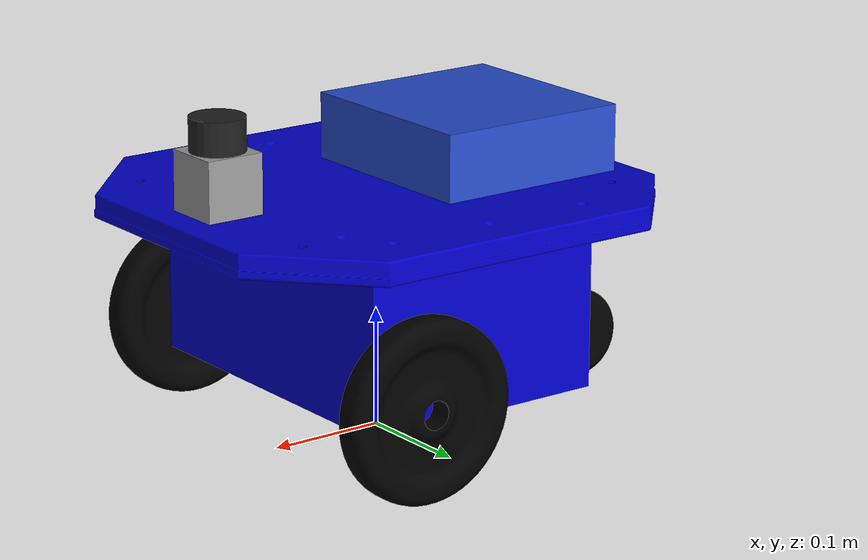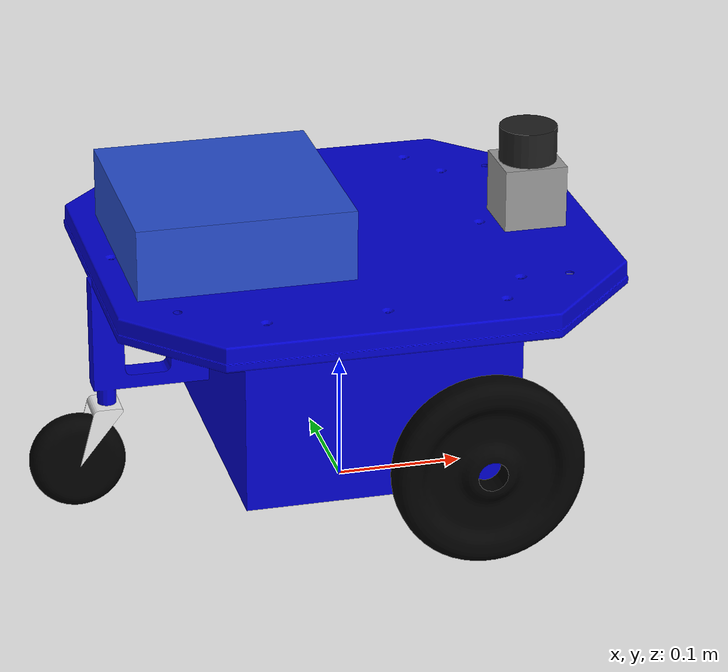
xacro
<?xml version="1.0"?>

<robot name="erratic"
    xmlns:sensor="http://playerstage.sourceforge.net/gazebo/xmlschema/#sensor"
    xmlns:controller="http://playerstage.sourceforge.net/gazebo/xmlschema/#controller"
    xmlns:interface="http://playerstage.sourceforge.net/gazebo/xmlschema/#interface">

    <!-- Included URDF Files -->
    <include filename="$(find erratic_description)/urdf/erratic_base.xacro" />
    <include filename="$(find erratic_description)/urdf/erratic_hokuyo_laser.xacro" />

    <erratic />

    <!-- BASE LASER ATTACHMENT -->
    <erratic_hokuyo_laser parent="base_link">
        <origin xyz="${base_link_to_front - 0.01 - 0.04} 0 ${base_link_to_top}" rpy="0 0 0" />
    </erratic_hokuyo_laser>
</robot>

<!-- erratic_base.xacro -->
<robot
    xmlns:sensor="http://playerstage.sourceforge.net/gazebo/xmlschema/#sensor"
    xmlns:controller="http://playerstage.sourceforge.net/gazebo/xmlschema/#controller"
    xmlns:interface="http://playerstage.sourceforge.net/gazebo/xmlschema/#interface">

    <!-- Included URDF Files -->
    <include filename="$(find erratic_description)/urdf/materials.urdf.xacro" />
    <include filename="$(find erratic_description)/urdf/erratic_computer.xacro" />
    <include filename="$(find erratic_description)/urdf/erratic_wheel.xacro" />

    <property name="base_link_to_top" value="0.0795" />
    <property name="base_link_to_front" value="0.2025" />
    <property name="base_link_to_back" value="0.1975" />

    <macro name="erratic">
        <!-- base_footprint is a fictitious link(frame) that is on the ground right below base_link origin,
             navigation stack depends on this frame -->
        <link name="base_footprint">
            <inertial>
                <mass value="0.0001" />
                <origin xyz="0 0 0" />
                <inertia ixx="0.0001" ixy="0.0" ixz="0.0"
                         iyy="0.0001" iyz="0.0"
                         izz="0.0001" />
            </inertial>

            <visual>
                <origin xyz="0 0 0" rpy="0 0 0" />
                <geometry>
                    <box size="0.001 0.001 0.001" />
                </geometry>
                <material name="Green" />
            </visual>

            <collision>
                <origin xyz="0 0 0.128" rpy="0 0 0" />
                <geometry>
                  <box size="0.001 0.001 0.001" />
                </geometry>
            </collision>
        </link>

        <joint name="base_footprint_joint" type="fixed">
            <origin xyz="0 0 0.128" rpy="0 0 0" />
            <parent link="base_footprint"/>
            <child link="base_link" />
        </joint>

        <!-- Links and Joints (i.e., the robot) -->
        <link name="base_link">
            <inertial>
                <mass value="20" />
                <origin xyz="0 0 0" />
                <inertia ixx="1.0" ixy="0.0" ixz="0.0"
                         iyy="1.0" iyz="0.0"
                         izz="1.0" />
            </inertial>

            <visual>
                <origin xyz="0 0 0" rpy="0 0 0" />
                <geometry>
                    <mesh filename="package://erratic_description/meshes/collada/erratic_base_link.dae"/>
                </geometry>
                <material name="Blue" />
            </visual>

            <collision>
                <origin xyz="0 0 0" rpy="0 0 0" />
                <geometry>
                    <mesh filename="package://erratic_description/meshes/collada/erratic_base_link.dae"/>
                </geometry>
            </collision>
        </link>

        <joint name="base_caster_support_joint" type="continuous">
            <origin xyz="-0.188 0 -0.043" rpy="0 0 0" />
            <parent link="base_link" />
            <child link="base_caster_support_link"/>

            <axis xyz="0 0 1" />
            <anchor xyz="0.01 0 0" />
            <limit effort="100" velocity="100" k_velocity="0" />
            <joint_properties damping="0.0" friction="0.0" />
        </joint>

        <transmission type="pr2_mechanism_model/SimpleTransmission" name="base_caster_support_trans">
            <actuator name="base_caster_support_motor" />
            <joint name="base_caster_support_joint" />
            <mechanicalReduction>1.0</mechanicalReduction>
        </transmission>

        <link name="base_caster_support_link">
            <inertial>
                <mass value="0.1"/>
                <origin xyz="0 0 0" />
                <inertia ixx="0.01" ixy="0.0" ixz="0.0"
                         iyy="0.01" iyz="0.0"
                         izz="0.01" />
            </inertial>

            <visual>
                <origin xyz="0 0 0" rpy="0 0 0" />
                <geometry>
                    <mesh filename="package://erratic_description/meshes/collada/erratic_caster_support_link.dae"/>
                </geometry>
            </visual>

            <collision>
                <origin xyz="0 0 0" rpy="0 0 0" />
                <geometry>
                    <mesh filename="package://erratic_description/meshes/collada/erratic_caster_support_link.dae"/>
                </geometry>
            </collision>
        </link>

        <joint name="caster_wheel_joint" type="continuous">
            <origin xyz="-0.025 0 -0.0469" rpy="0 0 0" />
            <parent link="base_caster_support_link" />
            <child link="caster_wheel_link" />

            <axis xyz="0 1 0" />
            <anchor xyz="0 0 0" />
            <limit effort="100" velocity="100" k_velocity="0" />
            <joint_properties damping="0.0" friction="0.0" />
        </joint>

        <transmission type="pr2_mechanism_model/SimpleTransmission" name="caster_wheel_trans">
            <actuator name="caster_wheel_motor" />
            <joint name="caster_wheel_joint" />
            <mechanicalReduction>1.0</mechanicalReduction>
        </transmission>

        <link name="caster_wheel_link">
            <inertial>
                <mass value="0.1" />
                <origin xyz="0 0 0" rpy="0 0 0" />
                <inertia  ixx="0.012411765597" ixy="-0.000711733678" ixz="0.00050272983"
                          iyy="0.015218160428" iyz="-0.000004273467"
                          izz="0.011763977943" />
            </inertial>

            <visual>
                <origin xyz="0 0 0" rpy="0 0 0" />
                <geometry>
                    <mesh filename="package://erratic_description/meshes/collada/erratic_caster_wheel_link.dae"/>
                </geometry>
                <material name="Black"/>
            </visual>

            <collision>
                <origin xyz="0 0 0" rpy="0 0 0" />
                <geometry>
                    <mesh filename="package://erratic_description/meshes/collada/erratic_caster_wheel_link.dae"/>
                </geometry>
            </collision>
        </link>

        <gazebo reference="caster_wheel_link">
            <mu1 value="100.0" />
            <mu2 value="100.0" />
            <kp  value="1000000.0" />
            <kd  value="1.0" />
        </gazebo>

        <!-- MACRO INSTANTIATION -->

        <erratic_computer parent="base_link">
            <origin xyz="${-base_link_to_back + computer_size_x/2 + 0.02} 0 ${base_link_to_top}" rpy="0 0 0" />
        </erratic_computer>

        <erratic_wheel suffix="left" parent="base_link">
            <origin xyz="0.075 0.16525 -0.053" rpy="0 0 0" />
        </erratic_wheel>

        <erratic_wheel suffix="right" parent="base_link">
            <origin xyz="0.075 -0.16525 -0.053" rpy="0 0 0" />
        </erratic_wheel>

        <!-- CONTROLLERS -->

        <gazebo>
            <controller:diffdrive_plugin name="differential_drive_controller" plugin="libdiffdrive_plugin.so">
                <alwaysOn>true</alwaysOn>
                <update>100</update>
                <updateRate>100.0</updateRate>
                <leftJoint>base_link_right_wheel_joint</leftJoint>
                <rightJoint>base_link_left_wheel_joint</rightJoint>
                <wheelSeparation>0.3305</wheelSeparation>
                <wheelDiameter>0.15</wheelDiameter>
                <torque>5</torque>
                <interface:position name="position_iface_0"/>
                <robotNamespace>/</robotNamespace>
                <topicName>cmd_vel</topicName>
            </controller:diffdrive_plugin>

            <controller:gazebo_ros_p3d name="p3d_base_controller" plugin="libgazebo_ros_p3d.so">
                <alwaysOn>true</alwaysOn>
                <updateRate>100.0</updateRate>
                <bodyName>base_link</bodyName>
                <topicName>base_pose_ground_truth</topicName>
                <gaussianNoise>0.01</gaussianNoise>
                <frameName>map</frameName>
                <xyzOffsets>0 0 0</xyzOffsets>
                <rpyOffsets>0 0 0</rpyOffsets>
                <interface:position name="p3d_base_position"/>
            </controller:gazebo_ros_p3d>

            <canonicalBody>base_footprint</canonicalBody>

            <controller:gazebo_ros_controller_manager name="gazebo_ros_controller_manager" plugin="libgazebo_ros_controller_manager.so">
                <alwaysOn>true</alwaysOn>
                <updateRate>100.0</updateRate>
                <interface:audio name="gazebo_ros_controller_manager_dummy_iface" />
            </controller:gazebo_ros_controller_manager>
        </gazebo>

        <!-- GAZEBO MATERIALS -->

        <gazebo reference="base_link">
            <material>Erratic/BlueBrushedAluminum</material>
        </gazebo>

        <gazebo reference="base_top_link">
            <material>Erratic/BlueBrushedAluminum</material>
        </gazebo>

        <gazebo reference="caster_wheel_link">
            <material>Erratic/Black</material>
        </gazebo>

        <gazebo reference="base_caster_box_link">
            <material>Erratic/Black</material>
        </gazebo>

        <gazebo reference="base_caster_support_link">
            <material>Erratic/White</material>
        </gazebo>
    </macro>
</robot>

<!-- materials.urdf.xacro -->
<robot>

    <material name="Black">
        <color rgba="0.0 0.0 0.0 1.0"/>
    </material>

    <material name="Blue">
        <color rgba="0.0 0.0 0.8 1.0"/>
    </material>

    <material name="Green">
        <color rgba="0.0 0.8 0.0 1.0"/>
    </material>

    <material name="Grey">
        <color rgba="0.7 0.7 0.7 1.0"/>
    </material>

    <material name="Grey2">
        <color rgba="0.9 0.9 0.9 1.0"/>
    </material>

    <material name="Red">
        <color rgba="0.8 0.0 0.0 1.0"/>
    </material>

    <material name="White">
        <color rgba="1.0 1.0 1.0 1.0"/>
    </material>

    <material name="GunMetalBrushedAluminum">
        <texture filename="package://smart_arm_description/Media/materials/textures/gun_metal_brushed_aluminum.jpg" />
    </material>

</robot>

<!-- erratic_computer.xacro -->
<robot
    xmlns:sensor="http://playerstage.sourceforge.net/gazebo/xmlschema/#sensor"
    xmlns:controller="http://playerstage.sourceforge.net/gazebo/xmlschema/#controller"
    xmlns:interface="http://playerstage.sourceforge.net/gazebo/xmlschema/#interface">

    <property name="computer_size_x" value="0.170" />
    <property name="computer_size_y" value="0.175" />
    <property name="computer_size_z" value="0.056" />

    <macro name="erratic_computer" params="parent *origin">
        <joint name="computer_mount_joint" type="fixed">
            <insert_block name="origin" />
            <parent link="${parent}" />
            <child link="computer_link" />
        </joint>

        <link name="computer_link">
            <inertial>
                <mass value="2"/>
                <origin xyz="0 0 ${computer_size_z/2}" rpy="0 0 0" />
                <inertia    ixx="0.1" ixy="0" ixz="0"
                            iyy="0.1" iyz="0"
                            izz="0.1"/>
            </inertial>

            <visual>
                <origin xyz="0 0 ${computer_size_z/2}" rpy="0 0 0" />
                <geometry>
                    <box size="${computer_size_x} ${computer_size_y} ${computer_size_z}"/>
                </geometry>
            </visual>

            <collision>
                <origin xyz="0 0 ${computer_size_z/2}" rpy="0 0 0" />
                <geometry>
                    <box size="${computer_size_x} ${computer_size_y} ${computer_size_z}"/>
                </geometry>
            </collision>
        </link>

        <gazebo reference="computer_link">
            <material>Erratic/BlueBrushedAluminum</material>
        </gazebo>
    </macro>
</robot>

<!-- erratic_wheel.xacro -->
<robot
    xmlns:sensor="http://playerstage.sourceforge.net/gazebo/xmlschema/#sensor"
    xmlns:controller="http://playerstage.sourceforge.net/gazebo/xmlschema/#controller"
    xmlns:interface="http://playerstage.sourceforge.net/gazebo/xmlschema/#interface">

    <macro name="erratic_wheel" params="suffix parent *origin">
        <joint name="${parent}_${suffix}_wheel_joint" type="continuous">
            <insert_block name="origin" />
            <axis xyz="0 1 0" />
            <anchor xyz="0 0 0" />
            <limit effort="100" velocity="100" />
            <joint_properties damping="0.0" friction="0.0" />
            <parent link="${parent}" />
            <child link="${parent}_${suffix}_wheel_link" />
        </joint>

        <link name="${parent}_${suffix}_wheel_link">
            <inertial>
                <mass value="0.1" />
                <origin xyz=" 0 0 0 " />
                <inertia  ixx="0.012411765597" ixy="0.0" ixz="0.0"
                          iyy="0.015218160428" iyz="0.0"
                          izz="0.011763977943" />
            </inertial>

            <visual>
                <origin xyz="0 0 0" rpy="0 0 0" />
                <geometry>
                    <mesh filename="package://erratic_description/meshes/collada/erratic_front_wheel_link.dae"/>
                </geometry>
                <material name="Black" />
            </visual>

            <collision>
                <origin xyz="0 0 0" rpy="0 0 0" />
                <geometry>
                    <mesh filename="package://erratic_description/meshes/collada/erratic_front_wheel_link.dae"/>
                </geometry>
            </collision>
        </link>

        <gazebo reference="${parent}_${suffix}_wheel_link" >
            <mu1 value="100.0" />
            <mu2 value="100.0" />
            <kp  value="1000000.0" />
            <kd  value="1.0" />
            <material>Erratic/Grey</material>
        </gazebo>

        <gazebo reference="${parent}_${suffix}_motor_link" >
            <material>Erratic/White</material>
        </gazebo>

        <transmission type="pr2_mechanism_model/SimpleTransmission" name="${parent}_${suffix}_wheel_trans">
            <actuator name="${parent}_${suffix}_wheel_motor" />
            <joint name="${parent}_${suffix}_wheel_joint" />
            <mechanicalReduction>1.0</mechanicalReduction>
        </transmission>
    </macro>
</robot>

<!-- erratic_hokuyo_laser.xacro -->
<robot
    xmlns:sensor="http://playerstage.sourceforge.net/gazebo/xmlschema/#sensor"
    xmlns:controller="http://playerstage.sourceforge.net/gazebo/xmlschema/#controller"
    xmlns:interface="http://playerstage.sourceforge.net/gazebo/xmlschema/#interface">

    <macro name="erratic_hokuyo_laser" params="parent *origin">
        <joint name="laser_base_mount_joint" type="fixed">
            <insert_block name="origin" />
            <parent link="${parent}"/>
            <child link="laser_base_link"/>
        </joint>

        <link name="laser_base_link" type="fixed">
            <inertial>
                <mass value="0.1"/>
                <origin xyz="0 0 0.0"/>
                <inertia ixx="0.1" ixy="0" ixz="0" iyy="0.1" iyz="0" izz="0.1"/>
            </inertial>

            <visual>
                <origin rpy="0 0 0" xyz="0 0 0.025"/>
                <geometry>
                    <box size="0.05 0.05 0.05"/>
                </geometry>
            </visual>

            <collision>
                <origin rpy="0 0 0" xyz="0 0 0.025"/>
                <geometry>
                    <box size="0.05 0.05 0.05"/>
                </geometry>
            </collision>
        </link>

        <joint name="base_scan_joint" type="fixed" >
            <origin xyz="0 0 0.05" rpy="0 0 0" />
            <parent link="laser_base_link" />
            <child link="base_scan_link"/>
        </joint>

        <link name="base_scan_link" type="laser">
            <inertial>
                <mass value="0.1"/>
                <origin xyz="0 0 0.0"/>
                <inertia ixx="0.1" ixy="0" ixz="0" iyy="0.1" iyz="0" izz="0.1"/>
            </inertial>

            <visual>
                <origin rpy="0 0 0" xyz="0 0 0.014"/>
                <geometry>
                    <cylinder radius="0.0229" length="0.028"/>
                </geometry>
            </visual>

            <collision>
                <origin rpy="0 0 0" xyz="0 0 0.014"/>
                <geometry>
                    <cylinder radius="0.0229" length="0.028"/>
                </geometry>
            </collision>
        </link>

        <gazebo reference="base_scan_link">
            <sensor:ray name="laser">
                <rayCount>683</rayCount>
                <rangeCount>683</rangeCount>
                <laserCount>1</laserCount>

                <origin>0.0 0.0 0.0</origin>
                <displayRays>false</displayRays>

                <minAngle>-135</minAngle>
                <maxAngle> 135</maxAngle>

                <minRange>0.06</minRange>
                <maxRange>4.0</maxRange>
                <resRange>0.001</resRange>
                <updateRate>10.0</updateRate>

                <controller:gazebo_ros_laser name="gazebo_ros_base_scan_link_controller" plugin="libgazebo_ros_laser.so">
                    <gaussianNoise>0.005</gaussianNoise>
                    <alwaysOn>true</alwaysOn>
                    <updateRate>10.0</updateRate>
                    <topicName>base_scan/scan</topicName>
                    <frameName>base_scan_link</frameName>
                    <interface:laser name="gazebo_ros_base_scan_link_iface"/>
                </controller:gazebo_ros_laser>
            </sensor:ray>
        </gazebo>

        <gazebo reference="laser_base_link">
            <material>Erratic/Grey</material>
        </gazebo>

        <gazebo reference="base_scan_link">
            <material>Erratic/Black</material>
        </gazebo>
    </macro>
</robot>
